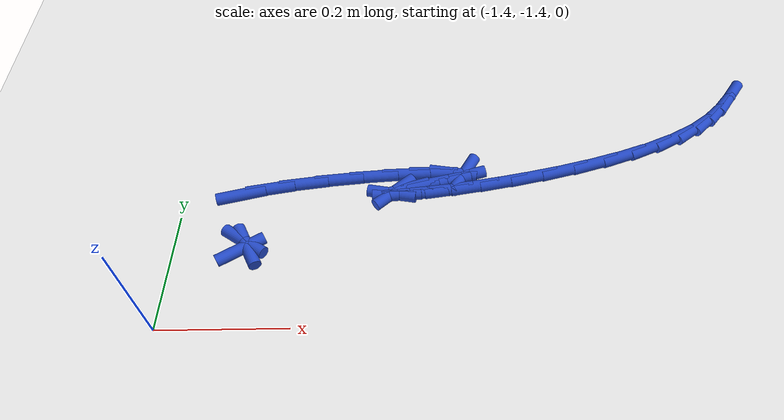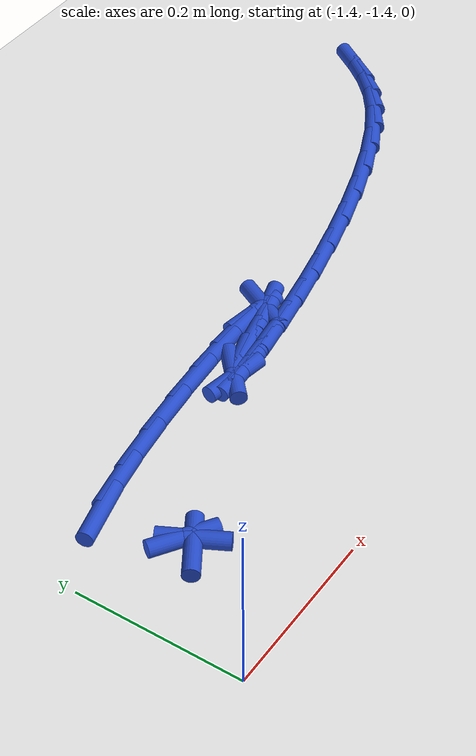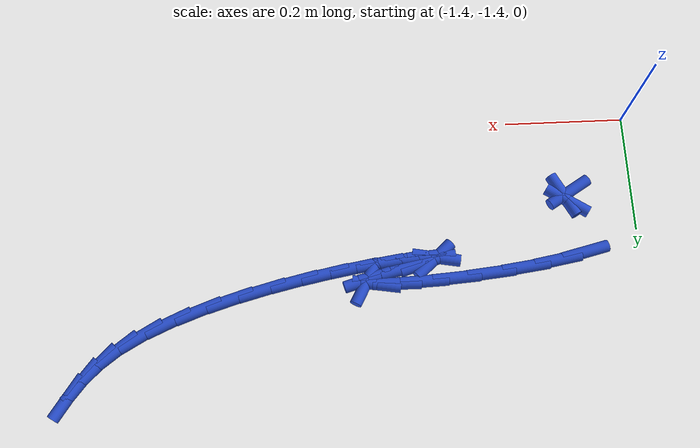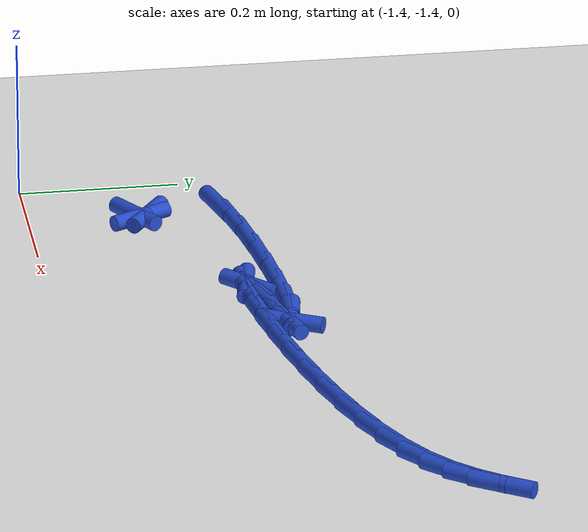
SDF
<sdf version="1.6">
 <world name="default">
  <model name="ground_plane">
   <static>1</static>
   <link name="link">
    <collision name="collision">
     <geometry><plane><normal>0 0 1</normal><size>100 100</size></plane></geometry>
     <surface><friction><ode><mu>100</mu><mu2>50</mu2></ode></friction></surface>
    </collision>
    <visual name="visual">
     <cast_shadows>0</cast_shadows>
     <geometry><plane><normal>0 0 1</normal><size>100 100</size></plane></geometry>
     <material>
      <script><uri>file://media/materials/scripts/gazebo.material</uri><name>Gazebo/WhiteGlow</name></script>
     </material>
    </visual>
   </link>
  </model>
  <model name="line">
   <link name="link_199">
    <pose>-1.2920891796039489 -1.2672311168628285 0.01 0 1.57 0.5544943039363142</pose>
    <collision name="collision">
     <geometry><cylinder><radius>0.01</radius><length>0.08</length></cylinder></geometry>
    </collision>
    <visual name="visual">
     <material>
      <script><name>Gazebo/Blue</name><uri>file://media/materials/scripts/gazebo.material</uri></script>
     </material>
     <geometry><cylinder><radius>0.01</radius><length>0.08</length></cylinder></geometry>
    </visual>
   </link>
   <link name="link_200">
    <pose>-1.283514231470777 -1.2619205996473462 0.01 0 1.57 -1.087888265110942</pose>
    <collision name="collision">
     <geometry><cylinder><radius>0.01</radius><length>0.08</length></cylinder></geometry>
    </collision>
    <visual name="visual">
     <material>
      <script><name>Gazebo/Blue</name><uri>file://media/materials/scripts/gazebo.material</uri></script>
     </material>
     <geometry><cylinder><radius>0.01</radius><length>0.08</length></cylinder></geometry>
    </visual>
   </link>
   <link name="link_201">
    <pose>-1.2883568970811554 -1.25268438331057 0.01 0 1.57 -0.5860810970502591</pose>
    <collision name="collision">
     <geometry><cylinder><radius>0.01</radius><length>0.08</length></cylinder></geometry>
    </collision>
    <visual name="visual">
     <material>
      <script><name>Gazebo/Blue</name><uri>file://media/materials/scripts/gazebo.material</uri></script>
     </material>
     <geometry><cylinder><radius>0.01</radius><length>0.08</length></cylinder></geometry>
    </visual>
   </link>
   <link name="link_207">
    <pose>-1.3072353017836424 -1.1613393724905698 0.01 0 1.57 0.24039166476749707</pose>
    <collision name="collision">
     <geometry><cylinder><radius>0.01</radius><length>0.08</length></cylinder></geometry>
    </collision>
    <visual name="visual">
     <material>
      <script><name>Gazebo/Blue</name><uri>file://media/materials/scripts/gazebo.material</uri></script>
     </material>
     <geometry><cylinder><radius>0.01</radius><length>0.08</length></cylinder></geometry>
    </visual>
   </link>
   <link name="link_208">
    <pose>-1.2610597721751131 -1.1500202789094789 0.01 0 1.57 0.17574575608880366</pose>
    <collision name="collision">
     <geometry><cylinder><radius>0.01</radius><length>0.08</length></cylinder></geometry>
    </collision>
    <visual name="visual">
     <material>
      <script><name>Gazebo/Blue</name><uri>file://media/materials/scripts/gazebo.material</uri></script>
     </material>
     <geometry><cylinder><radius>0.01</radius><length>0.08</length></cylinder></geometry>
    </visual>
   </link>
   <link name="link_209">
    <pose>-1.2073112962326569 -1.1404757434392123 0.01 0 1.57 0.13313422325946897</pose>
    <collision name="collision">
     <geometry><cylinder><radius>0.01</radius><length>0.08</length></cylinder></geometry>
    </collision>
    <visual name="visual">
     <material>
      <script><name>Gazebo/Blue</name><uri>file://media/materials/scripts/gazebo.material</uri></script>
     </material>
     <geometry><cylinder><radius>0.01</radius><length>0.08</length></cylinder></geometry>
    </visual>
   </link>
   <link name="link_210">
    <pose>-1.1498995410472521 -1.1327867920620691 0.01 0 1.57 0.10028874584808503</pose>
    <collision name="collision">
     <geometry><cylinder><radius>0.01</radius><length>0.08</length></cylinder></geometry>
    </collision>
    <visual name="visual">
     <material>
      <script><name>Gazebo/Blue</name><uri>file://media/materials/scripts/gazebo.material</uri></script>
     </material>
     <geometry><cylinder><radius>0.01</radius><length>0.08</length></cylinder></geometry>
    </visual>
   </link>
   <link name="link_211">
    <pose>-1.0927341737098692 -1.127034450760347 0.01 0 1.57 0.07033753231892043</pose>
    <collision name="collision">
     <geometry><cylinder><radius>0.01</radius><length>0.08</length></cylinder></geometry>
    </collision>
    <visual name="visual">
     <material>
      <script><name>Gazebo/Blue</name><uri>file://media/materials/scripts/gazebo.material</uri></script>
     </material>
     <geometry><cylinder><radius>0.01</radius><length>0.08</length></cylinder></geometry>
    </visual>
   </link>
   <link name="link_212">
    <pose>-1.0397248613114856 -1.123299745516344 0.01 0 1.57 0.03638608120535724</pose>
    <collision name="collision">
     <geometry><cylinder><radius>0.01</radius><length>0.08</length></cylinder></geometry>
    </collision>
    <visual name="visual">
     <material>
      <script><name>Gazebo/Blue</name><uri>file://media/materials/scripts/gazebo.material</uri></script>
     </material>
     <geometry><cylinder><radius>0.01</radius><length>0.08</length></cylinder></geometry>
    </visual>
   </link>
   <link name="link_213">
    <pose>-0.9947812709430723 -1.121663702312358 0.01 0 1.57 -0.016488480716636205</pose>
    <collision name="collision">
     <geometry><cylinder><radius>0.01</radius><length>0.08</length></cylinder></geometry>
    </collision>
    <visual name="visual">
     <material>
      <script><name>Gazebo/Blue</name><uri>file://media/materials/scripts/gazebo.material</uri></script>
     </material>
     <geometry><cylinder><radius>0.01</radius><length>0.08</length></cylinder></geometry>
    </visual>
   </link>
   <link name="link_214">
    <pose>-0.9618130696956065 -1.1222073471306868 0.01 0 1.57 -0.16270818636768153</pose>
    <collision name="collision">
     <geometry><cylinder><radius>0.01</radius><length>0.08</length></cylinder></geometry>
    </collision>
    <visual name="visual">
     <material>
      <script><name>Gazebo/Blue</name><uri>file://media/materials/scripts/gazebo.material</uri></script>
     </material>
     <geometry><cylinder><radius>0.01</radius><length>0.08</length></cylinder></geometry>
    </visual>
   </link>
   <link name="link_215">
    <pose>-0.9447299246600607 -1.125011705953629 0.01 0 1.57 1.0858459965049452</pose>
    <collision name="collision">
     <geometry><cylinder><radius>0.01</radius><length>0.08</length></cylinder></geometry>
    </collision>
    <visual name="visual">
     <material>
      <script><name>Gazebo/Blue</name><uri>file://media/materials/scripts/gazebo.material</uri></script>
     </material>
     <geometry><cylinder><radius>0.01</radius><length>0.08</length></cylinder></geometry>
    </visual>
   </link>
   <link name="link_216">
    <pose>-0.9474415029274088 -1.1301578047634824 0.01 0 1.57 0.29248593266219414</pose>
    <collision name="collision">
     <geometry><cylinder><radius>0.01</radius><length>0.08</length></cylinder></geometry>
    </collision>
    <visual name="visual">
     <material>
      <script><name>Gazebo/Blue</name><uri>file://media/materials/scripts/gazebo.material</uri></script>
     </material>
     <geometry><cylinder><radius>0.01</radius><length>0.08</length></cylinder></geometry>
    </visual>
   </link>
   <link name="link_217">
    <pose>-0.9719925789205918 -1.137550676506915 0.01 0 1.57 0.22839390381044736</pose>
    <collision name="collision">
     <geometry><cylinder><radius>0.01</radius><length>0.08</length></cylinder></geometry>
    </collision>
    <visual name="visual">
     <material>
      <script><name>Gazebo/Blue</name><uri>file://media/materials/scripts/gazebo.material</uri></script>
     </material>
     <geometry><cylinder><radius>0.01</radius><length>0.08</length></cylinder></geometry>
    </visual>
   </link>
   <link name="link_218">
    <pose>-1.0080138598940174 -1.1459238178792397 0.01 0 1.57 0.232925447566565</pose>
    <collision name="collision">
     <geometry><cylinder><radius>0.01</radius><length>0.08</length></cylinder></geometry>
    </collision>
    <visual name="visual">
     <material>
      <script><name>Gazebo/Blue</name><uri>file://media/materials/scripts/gazebo.material</uri></script>
     </material>
     <geometry><cylinder><radius>0.01</radius><length>0.08</length></cylinder></geometry>
    </visual>
   </link>
   <link name="link_219">
    <pose>-1.0401010947974574 -1.1535359148435127 0.01 0 1.57 0.30572543772596783</pose>
    <collision name="collision">
     <geometry><cylinder><radius>0.01</radius><length>0.08</length></cylinder></geometry>
    </collision>
    <visual name="visual">
     <material>
      <script><name>Gazebo/Blue</name><uri>file://media/materials/scripts/gazebo.material</uri></script>
     </material>
     <geometry><cylinder><radius>0.01</radius><length>0.08</length></cylinder></geometry>
    </visual>
   </link>
   <link name="link_220">
    <pose>-1.0579870178148754 -1.1591810832326668 0.01 0 1.57 0.7361912929793876</pose>
    <collision name="collision">
     <geometry><cylinder><radius>0.01</radius><length>0.08</length></cylinder></geometry>
    </collision>
    <visual name="visual">
     <material>
      <script><name>Gazebo/Blue</name><uri>file://media/materials/scripts/gazebo.material</uri></script>
     </material>
     <geometry><cylinder><radius>0.01</radius><length>0.08</length></cylinder></geometry>
    </visual>
   </link>
   <link name="link_221">
    <pose>-1.061925374612421 -1.1627497447228592 0.01 0 1.57 -0.17711893988090152</pose>
    <collision name="collision">
     <geometry><cylinder><radius>0.01</radius><length>0.08</length></cylinder></geometry>
    </collision>
    <visual name="visual">
     <material>
      <script><name>Gazebo/Blue</name><uri>file://media/materials/scripts/gazebo.material</uri></script>
     </material>
     <geometry><cylinder><radius>0.01</radius><length>0.08</length></cylinder></geometry>
    </visual>
   </link>
   <link name="link_222">
    <pose>-1.0534538238554658 -1.164266106731819 0.01 0 1.57 0.026448305800855356</pose>
    <collision name="collision">
     <geometry><cylinder><radius>0.01</radius><length>0.08</length></cylinder></geometry>
    </collision>
    <visual name="visual">
     <material>
      <script><name>Gazebo/Blue</name><uri>file://media/materials/scripts/gazebo.material</uri></script>
     </material>
     <geometry><cylinder><radius>0.01</radius><length>0.08</length></cylinder></geometry>
    </visual>
   </link>
   <link name="link_223">
    <pose>-1.0341100242093804 -1.163754376677276 0.01 0 1.57 0.08749418042266029</pose>
    <collision name="collision">
     <geometry><cylinder><radius>0.01</radius><length>0.08</length></cylinder></geometry>
    </collision>
    <visual name="visual">
     <material>
      <script><name>Gazebo/Blue</name><uri>file://media/materials/scripts/gazebo.material</uri></script>
     </material>
     <geometry><cylinder><radius>0.01</radius><length>0.08</length></cylinder></geometry>
    </visual>
   </link>
   <link name="link_224">
    <pose>-1.0054316343395349 -1.16123876197696 0.01 0 1.57 0.12262367767866851</pose>
    <collision name="collision">
     <geometry><cylinder><radius>0.01</radius><length>0.08</length></cylinder></geometry>
    </collision>
    <visual name="visual">
     <material>
      <script><name>Gazebo/Blue</name><uri>file://media/materials/scripts/gazebo.material</uri></script>
     </material>
     <geometry><cylinder><radius>0.01</radius><length>0.08</length></cylinder></geometry>
    </visual>
   </link>
   <link name="link_225">
    <pose>-0.9689563129113014 -1.1567434700486003 0.01 0 1.57 0.149818334987287</pose>
    <collision name="collision">
     <geometry><cylinder><radius>0.01</radius><length>0.08</length></cylinder></geometry>
    </collision>
    <visual name="visual">
     <material>
      <script><name>Gazebo/Blue</name><uri>file://media/materials/scripts/gazebo.material</uri></script>
     </material>
     <geometry><cylinder><radius>0.01</radius><length>0.08</length></cylinder></geometry>
    </visual>
   </link>
   <link name="link_226">
    <pose>-0.9262217185900503 -1.150292708309927 0.01 0 1.57 0.17482340028138932</pose>
    <collision name="collision">
     <geometry><cylinder><radius>0.01</radius><length>0.08</length></cylinder></geometry>
    </collision>
    <visual name="visual">
     <material>
      <script><name>Gazebo/Blue</name><uri>file://media/materials/scripts/gazebo.material</uri></script>
     </material>
     <geometry><cylinder><radius>0.01</radius><length>0.08</length></cylinder></geometry>
    </visual>
   </link>
   <link name="link_227">
    <pose>-0.8787655100411504 -1.1419106841786686 0.01 0 1.57 0.200451574193026</pose>
    <collision name="collision">
     <geometry><cylinder><radius>0.01</radius><length>0.08</length></cylinder></geometry>
    </collision>
    <visual name="visual">
     <material>
      <script><name>Gazebo/Blue</name><uri>file://media/materials/scripts/gazebo.material</uri></script>
     </material>
     <geometry><cylinder><radius>0.01</radius><length>0.08</length></cylinder></geometry>
    </visual>
   </link>
   <link name="link_228">
    <pose>-0.8281253459299757 -1.131621605072556 0.01 0 1.57 0.22871952037331159</pose>
    <collision name="collision">
     <geometry><cylinder><radius>0.01</radius><length>0.08</length></cylinder></geometry>
    </collision>
    <visual name="visual">
     <material>
      <script><name>Gazebo/Blue</name><uri>file://media/materials/scripts/gazebo.material</uri></script>
     </material>
     <geometry><cylinder><radius>0.01</radius><length>0.08</length></cylinder></geometry>
    </visual>
   </link>
   <link name="link_229">
    <pose>-0.7758388849218937 -1.1194496784093175 0.01 0 1.57 0.26164521112885875</pose>
    <collision name="collision">
     <geometry><cylinder><radius>0.01</radius><length>0.08</length></cylinder></geometry>
    </collision>
    <visual name="visual">
     <material>
      <script><name>Gazebo/Blue</name><uri>file://media/materials/scripts/gazebo.material</uri></script>
     </material>
     <geometry><cylinder><radius>0.01</radius><length>0.08</length></cylinder></geometry>
    </visual>
   </link>
   <link name="link_230">
    <pose>-0.7234437856822784 -1.105419111606684 0.01 0 1.57 0.30177800553072814</pose>
    <collision name="collision">
     <geometry><cylinder><radius>0.01</radius><length>0.08</length></cylinder></geometry>
    </collision>
    <visual name="visual">
     <material>
      <script><name>Gazebo/Blue</name><uri>file://media/materials/scripts/gazebo.material</uri></script>
     </material>
     <geometry><cylinder><radius>0.01</radius><length>0.08</length></cylinder></geometry>
    </visual>
   </link>
   <link name="link_231">
    <pose>-0.6724777068764975 -1.0895541120823837 0.01 0 1.57 0.3528296040388579</pose>
    <collision name="collision">
     <geometry><cylinder><radius>0.01</radius><length>0.08</length></cylinder></geometry>
    </collision>
    <visual name="visual">
     <material>
      <script><name>Gazebo/Blue</name><uri>file://media/materials/scripts/gazebo.material</uri></script>
     </material>
     <geometry><cylinder><radius>0.01</radius><length>0.08</length></cylinder></geometry>
    </visual>
   </link>
   <link name="link_232">
    <pose>-0.624478307169925 -1.0718788872541478 0.01 0 1.57 0.4207193922554466</pose>
    <collision name="collision">
     <geometry><cylinder><radius>0.01</radius><length>0.08</length></cylinder></geometry>
    </collision>
    <visual name="visual">
     <material>
      <script><name>Gazebo/Blue</name><uri>file://media/materials/scripts/gazebo.material</uri></script>
     </material>
     <geometry><cylinder><radius>0.01</radius><length>0.08</length></cylinder></geometry>
    </visual>
   </link>
   <link name="link_233">
    <pose>-0.5809832452279284 -1.0524176445397042 0.01 0 1.57 0.515541916864284</pose>
    <collision name="collision">
     <geometry><cylinder><radius>0.01</radius><length>0.08</length></cylinder></geometry>
    </collision>
    <visual name="visual">
     <material>
      <script><name>Gazebo/Blue</name><uri>file://media/materials/scripts/gazebo.material</uri></script>
     </material>
     <geometry><cylinder><radius>0.01</radius><length>0.08</length></cylinder></geometry>
    </visual>
   </link>
   <link name="link_234">
    <pose>-0.5435301793721682 -1.0311945913935887 0.01 0 1.57 0.6453299016230316</pose>
    <collision name="collision">
     <geometry><cylinder><radius>0.01</radius><length>0.08</length></cylinder></geometry>
    </collision>
    <visual name="visual">
     <material>
      <script><name>Gazebo/Blue</name><uri>file://media/materials/scripts/gazebo.material</uri></script>
     </material>
     <geometry><cylinder><radius>0.01</radius><length>0.08</length></cylinder></geometry>
    </visual>
   </link>
   <link name="link_235">
    <pose>-0.5131100832574651 -1.008292474736821 0.01 0 1.57 0.7801382341128584</pose>
    <collision name="collision">
     <geometry><cylinder><radius>0.01</radius><length>0.08</length></cylinder></geometry>
    </collision>
    <visual name="visual">
     <material>
      <script><name>Gazebo/Blue</name><uri>file://media/materials/scripts/gazebo.material</uri></script>
     </material>
     <geometry><cylinder><radius>0.01</radius><length>0.08</length></cylinder></geometry>
    </visual>
   </link>
   <link name="link_236">
    <pose>-0.4885831442309105 -0.9840222079293477 0.01 0 1.57 0.8942454860807285</pose>
    <collision name="collision">
     <geometry><cylinder><radius>0.01</radius><length>0.08</length></cylinder></geometry>
    </collision>
    <visual name="visual">
     <material>
      <script><name>Gazebo/Blue</name><uri>file://media/materials/scripts/gazebo.material</uri></script>
     </material>
     <geometry><cylinder><radius>0.01</radius><length>0.08</length></cylinder></geometry>
    </visual>
   </link>
   <link name="link_237">
    <pose>-0.46829048504313664 -0.9587502862166014 0.01 0 1.57 0.9709733370506697</pose>
    <collision name="collision">
     <geometry><cylinder><radius>0.01</radius><length>0.08</length></cylinder></geometry>
    </collision>
    <visual name="visual">
     <material>
      <script><name>Gazebo/Blue</name><uri>file://media/materials/scripts/gazebo.material</uri></script>
     </material>
     <geometry><cylinder><radius>0.01</radius><length>0.08</length></cylinder></geometry>
    </visual>
   </link>
  </model>
 </world>
</sdf>
